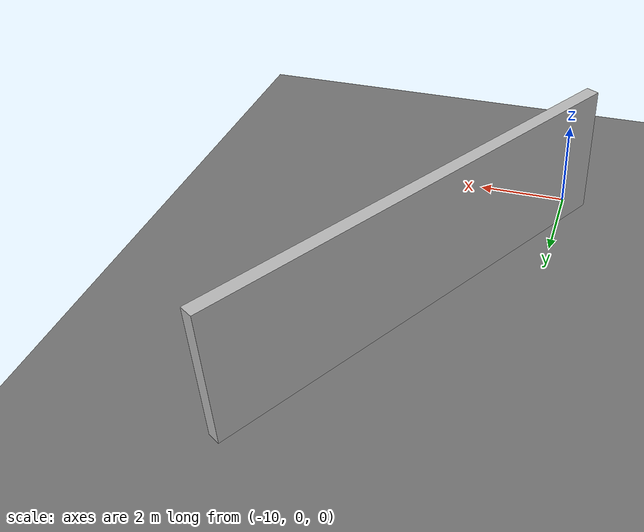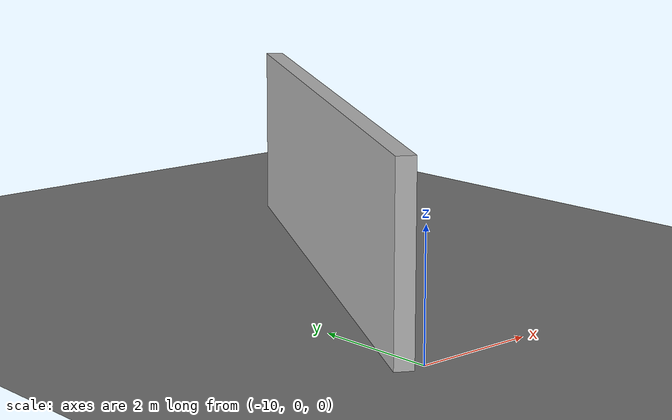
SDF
<sdf version="1.9">
 <world name="empty_world">
  <model name="ground_plane">
   <static>true</static>
   <link name="link">
    <collision name="collision">
     <geometry><plane><normal>0 0 1</normal><size>100 100</size></plane></geometry>
    </collision>
    <visual name="visual">
     <geometry><plane><normal>0 0 1</normal><size>100 100</size></plane></geometry>
     <material>
      <lighting>true</lighting>
      <ambient>0.45 0.45 0.45 1</ambient>
      <diffuse>0.45 0.45 0.45 1</diffuse>
      <specular>0.0 0.0 0.0 1</specular>
     </material>
    </visual>
   </link>
  </model>
  <model name="wall_1">
   <static>true</static>
   <pose>-7.79 4.5 1.5 0 0 1.0472</pose>
   <link name="link">
    <collision name="c"><geometry><box><size>10.39 0.3 3.0</size></box></geometry></collision>
    <visual name="v"><geometry><box><size>10.39 0.3 3.0</size></box></geometry></visual>
   </link>
  </model>
 </world>
</sdf>
